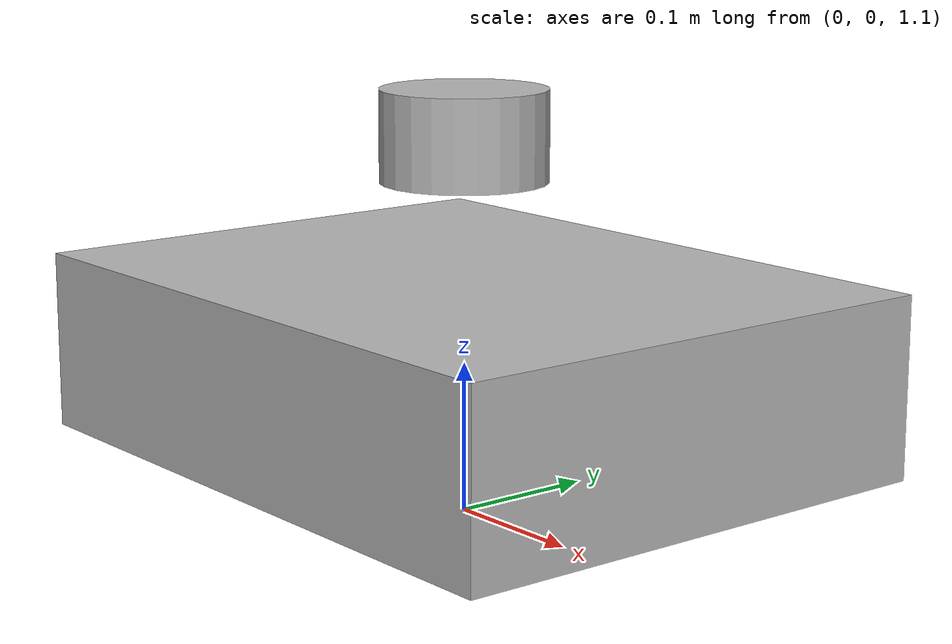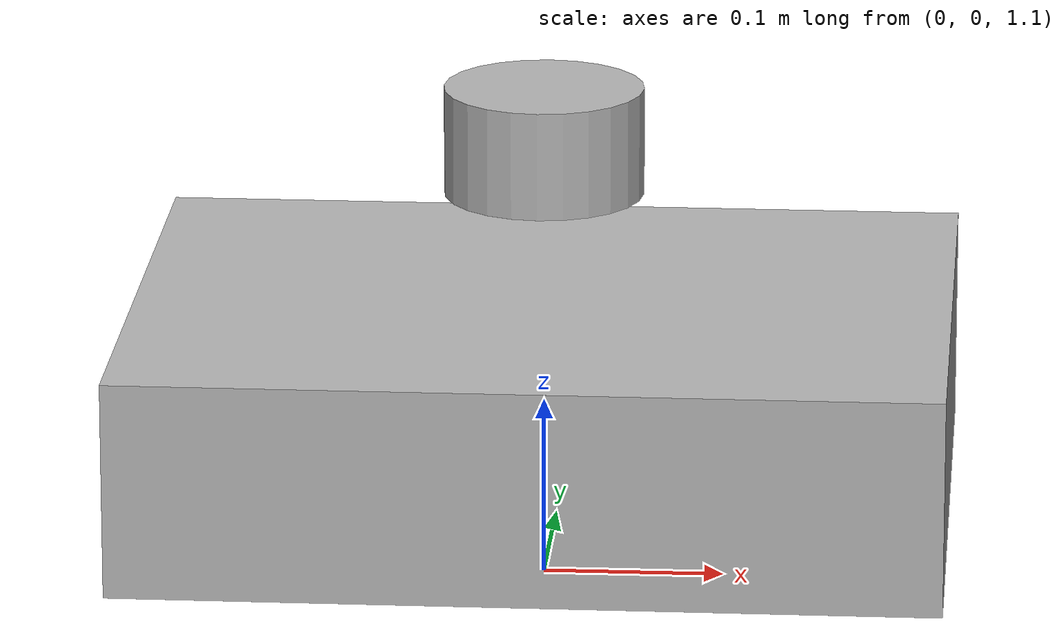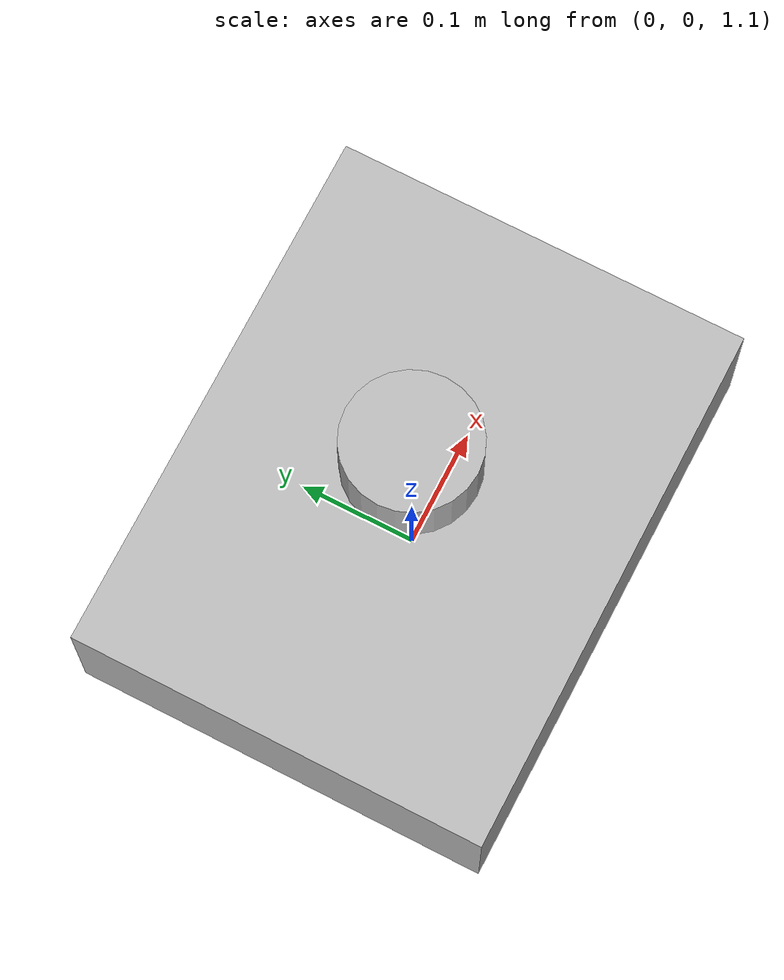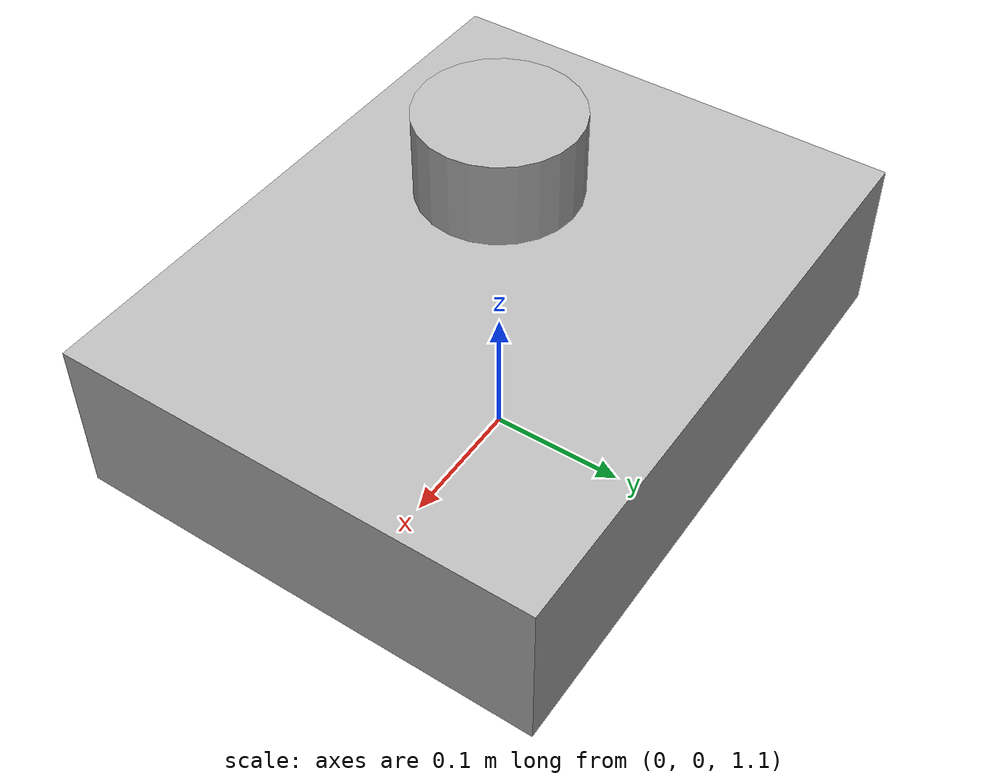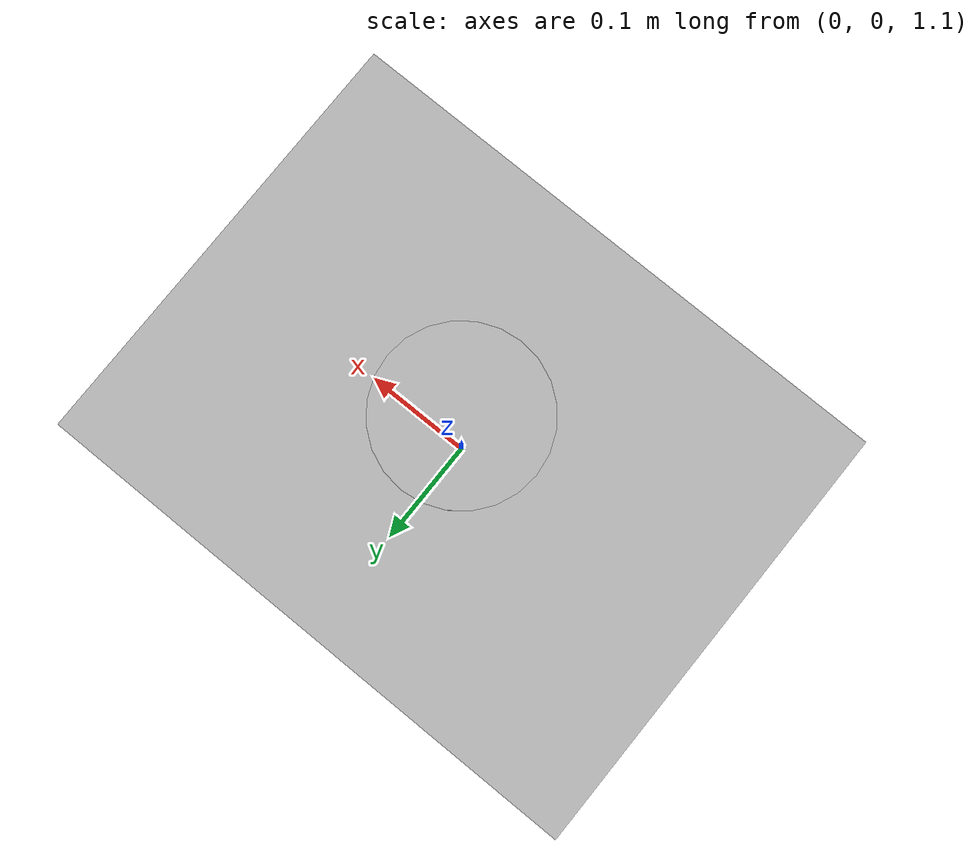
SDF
<?xml version="1.0"?>
<sdf version="1.9">
  <model name="mid360_imu_rig">
    <pose>0 0 1.2 0 0 0</pose>
    <link name="base_link">
      <inertial>
        <mass>1.0</mass>
        <inertia><ixx>0.02</ixx><iyy>0.02</iyy><izz>0.03</izz></inertia>
      </inertial>
      <visual name="body_visual">
        <geometry><box><size>0.45 0.35 0.12</size></box></geometry>
      </visual>
      <collision name="body_collision">
        <geometry><box><size>0.45 0.35 0.12</size></box></geometry>
      </collision>
      <sensor name="imu_sensor" type="imu">
        <always_on>true</always_on>
        <update_rate>200</update_rate>
        <topic>/sim/imu/data</topic>
        <frame_id>imu_link</frame_id>
      </sensor>
    </link>
    <link name="lidar_link">
      <pose relative_to="base_link">0 0 0.15 0 0 0</pose>
      <visual name="lidar_visual">
        <geometry><cylinder><radius>0.055</radius><length>0.06</length></cylinder></geometry>
      </visual>
      <sensor name="lidar_sensor" type="gpu_lidar">
        <always_on>true</always_on>
        <update_rate>10</update_rate>
        <topic>/sim/lidar/points</topic>
        <frame_id>lidar_link</frame_id>
        <lidar>
          <scan>
            <horizontal><samples>1024</samples><resolution>1</resolution><min_angle>-3.14159265</min_angle><max_angle>3.14159265</max_angle></horizontal>
            <vertical><samples>32</samples><resolution>1</resolution><min_angle>-0.52</min_angle><max_angle>0.52</max_angle></vertical>
          </scan>
          <range><min>0.2</min><max>70.0</max><resolution>0.02</resolution></range>
        </lidar>
      </sensor>
    </link>
    <joint name="base_to_lidar" type="fixed">
      <parent>base_link</parent><child>lidar_link</child>
    </joint>
    <plugin filename="gz-sim-velocity-control-system" name="gz::sim::systems::VelocityControl">
      <topic>/model/mid360_imu_rig/cmd_vel</topic>
    </plugin>
  </model>
</sdf>
